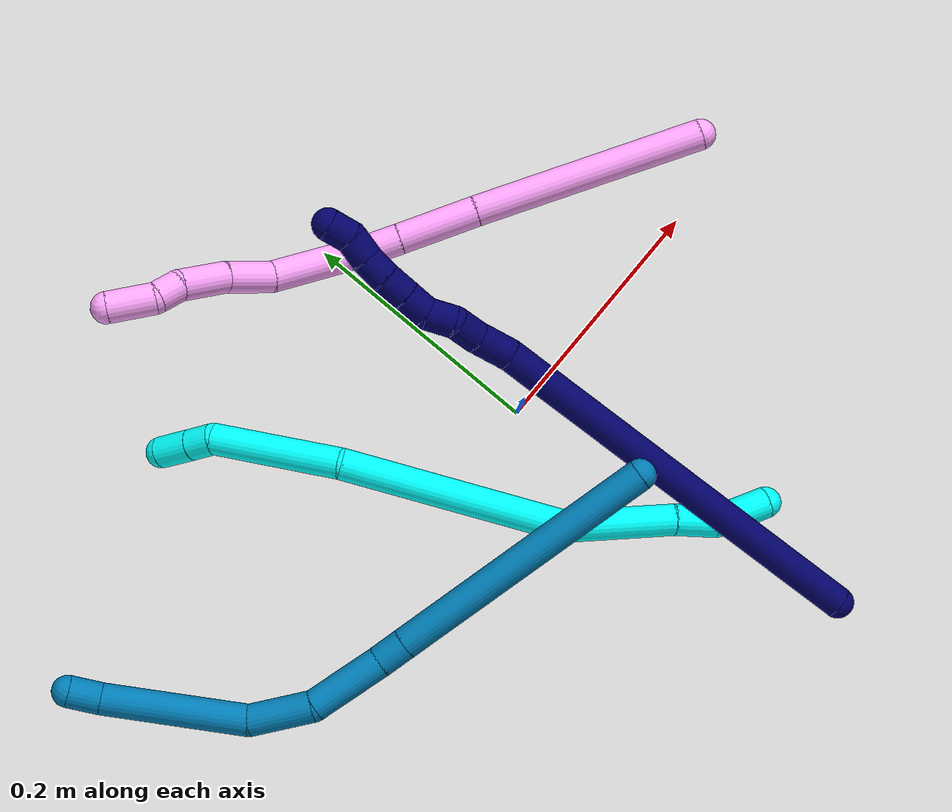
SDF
<sdf version="1.7">
 <world name="default">
  <model name="3">
   <static>0</static>
   <link name="3">
    <collision name="collision-cylinder-e_1_1_4">
     <pose>0.005304 0.018757 0.009859 -1.08686 0.245249 -0.148628</pose>
     <geometry><cylinder><radius>0.0125</radius><length>0.043688</length></cylinder></geometry>
     <surface>
      <friction><ode><mu>1.16</mu><mu2>1.16</mu2><slip1>0</slip1><slip2>0</slip2></ode></friction>
      <contact><ode><kp>1e+06</kp><kd>1</kd><max_vel>0</max_vel><min_depth>0.001</min_depth></ode></contact>
     </surface>
    </collision>
    <visual name="visual-cylinder-e_1_1_4">
     <pose>0.005304 0.018757 0.009859 -1.08686 0.245249 -0.148628</pose>
     <geometry><cylinder><radius>0.0125</radius><length>0.043688</length></cylinder></geometry>
     <material><ambient>0.003922 1 0.996078 1</ambient></material>
    </visual>
    <collision name="collision-cylinder-e_2_4_5">
     <pose>0.008256 0.051518 0.029446 -0.963685 -0.137054 0.071755</pose>
     <geometry><cylinder><radius>0.0125</radius><length>0.034426</length></cylinder></geometry>
     <surface>
      <friction><ode><mu>1.16</mu><mu2>1.16</mu2><slip1>0</slip1><slip2>0</slip2></ode></friction>
      <contact><ode><kp>1e+06</kp><kd>1</kd><max_vel>0</max_vel><min_depth>0.001</min_depth></ode></contact>
     </surface>
    </collision>
    <visual name="visual-cylinder-e_2_4_5">
     <pose>0.008256 0.051518 0.029446 -0.963685 -0.137054 0.071755</pose>
     <geometry><cylinder><radius>0.0125</radius><length>0.034426</length></cylinder></geometry>
     <material><ambient>0.003922 1 0.996078 1</ambient></material>
    </visual>
    <collision name="collision-cylinder-e_3_5_6">
     <pose>0.004808 0.100951 0.063854 -0.96234 -0.025382 0.013253</pose>
     <geometry><cylinder><radius>0.0125</radius><length>0.08638</length></cylinder></geometry>
     <surface>
      <friction><ode><mu>1.16</mu><mu2>1.16</mu2><slip1>0</slip1><slip2>0</slip2></ode></friction>
      <contact><ode><kp>1e+06</kp><kd>1</kd><max_vel>0</max_vel><min_depth>0.001</min_depth></ode></contact>
     </surface>
    </collision>
    <visual name="visual-cylinder-e_3_5_6">
     <pose>0.004808 0.100951 0.063854 -0.96234 -0.025382 0.013253</pose>
     <geometry><cylinder><radius>0.0125</radius><length>0.08638</length></cylinder></geometry>
     <material><ambient>0.003922 1 0.996078 1</ambient></material>
    </visual>
    <collision name="collision-cylinder-e_4_6_7">
     <pose>-0.024306 0.196929 0.149487 -0.782085 -0.315227 0.13086</pose>
     <geometry><cylinder><radius>0.0125</radius><length>0.18074</length></cylinder></geometry>
     <surface>
      <friction><ode><mu>1.16</mu><mu2>1.16</mu2><slip1>0</slip1><slip2>0</slip2></ode></friction>
      <contact><ode><kp>1e+06</kp><kd>1</kd><max_vel>0</max_vel><min_depth>0.001</min_depth></ode></contact>
     </surface>
    </collision>
    <visual name="visual-cylinder-e_4_6_7">
     <pose>-0.024306 0.196929 0.149487 -0.782085 -0.315227 0.13086</pose>
     <geometry><cylinder><radius>0.0125</radius><length>0.18074</length></cylinder></geometry>
     <material><ambient>0.003922 1 0.996078 1</ambient></material>
    </visual>
    <collision name="collision-cylinder-e_5_7_8">
     <pose>-0.060224 0.283638 0.254953 -0.531296 -0.151846 0.041388</pose>
     <geometry><cylinder><radius>0.0125</radius><length>0.104462</length></cylinder></geometry>
     <surface>
      <friction><ode><mu>1.16</mu><mu2>1.16</mu2><slip1>0</slip1><slip2>0</slip2></ode></friction>
      <contact><ode><kp>1e+06</kp><kd>1</kd><max_vel>0</max_vel><min_depth>0.001</min_depth></ode></contact>
     </surface>
    </collision>
    <visual name="visual-cylinder-e_5_7_8">
     <pose>-0.060224 0.283638 0.254953 -0.531296 -0.151846 0.041388</pose>
     <geometry><cylinder><radius>0.0125</radius><length>0.104462</length></cylinder></geometry>
     <material><ambient>0.003922 1 0.996078 1</ambient></material>
    </visual>
    <collision name="collision-cylinder-e_6_8_9">
     <pose>-0.064999 0.313647 0.308715 -0.394474 0.302475 -0.060891</pose>
     <geometry><cylinder><radius>0.0125</radius><length>0.020989</length></cylinder></geometry>
     <surface>
      <friction><ode><mu>1.16</mu><mu2>1.16</mu2><slip1>0</slip1><slip2>0</slip2></ode></friction>
      <contact><ode><kp>1e+06</kp><kd>1</kd><max_vel>0</max_vel><min_depth>0.001</min_depth></ode></contact>
     </surface>
    </collision>
    <visual name="visual-cylinder-e_6_8_9">
     <pose>-0.064999 0.313647 0.308715 -0.394474 0.302475 -0.060891</pose>
     <geometry><cylinder><radius>0.0125</radius><length>0.020989</length></cylinder></geometry>
     <material><ambient>0.003922 1 0.996078 1</ambient></material>
    </visual>
    <collision name="collision-cylinder-e_7_9_2">
     <pose>-0.057597 0.322714 0.330977 -0.381259 0.296031 -0.057531</pose>
     <geometry><cylinder><radius>0.0125</radius><length>0.029315</length></cylinder></geometry>
     <surface>
      <friction><ode><mu>1.16</mu><mu2>1.16</mu2><slip1>0</slip1><slip2>0</slip2></ode></friction>
      <contact><ode><kp>1e+06</kp><kd>1</kd><max_vel>0</max_vel><min_depth>0.001</min_depth></ode></contact>
     </surface>
    </collision>
    <visual name="visual-cylinder-e_7_9_2">
     <pose>-0.057597 0.322714 0.330977 -0.381259 0.296031 -0.057531</pose>
     <geometry><cylinder><radius>0.0125</radius><length>0.029315</length></cylinder></geometry>
     <material><ambient>0.003922 1 0.996078 1</ambient></material>
    </visual>
    <collision name="collision-sphere-2">
     <pose>-0.053321 0.32793 0.34399 0 -0 0</pose>
     <geometry><sphere><radius>0.0125</radius></sphere></geometry>
     <surface>
      <friction><ode><mu>1.16</mu><mu2>1.16</mu2><slip1>0</slip1><slip2>0</slip2></ode></friction>
      <contact><ode><kp>1e+06</kp><kd>1</kd><max_vel>0</max_vel><min_depth>0.001</min_depth></ode></contact>
     </surface>
    </collision>
    <visual name="visual-sphere-2">
     <pose>-0.053321 0.32793 0.34399 0 -0 0</pose>
     <geometry><sphere><radius>0.0125</radius></sphere></geometry>
     <material><ambient>0.003922 1 0.996078 1</ambient></material>
    </visual>
    <collision name="collision-sphere-9">
     <pose>-0.061873 0.317497 0.317964 0 -0 0</pose>
     <geometry><sphere><radius>0.0125</radius></sphere></geometry>
     <surface>
      <friction><ode><mu>1.16</mu><mu2>1.16</mu2><slip1>0</slip1><slip2>0</slip2></ode></friction>
      <contact><ode><kp>1e+06</kp><kd>1</kd><max_vel>0</max_vel><min_depth>0.001</min_depth></ode></contact>
     </surface>
    </collision>
    <visual name="visual-sphere-9">
     <pose>-0.061873 0.317497 0.317964 0 -0 0</pose>
     <geometry><sphere><radius>0.0125</radius></sphere></geometry>
     <material><ambient>0.003922 1 0.996078 1</ambient></material>
    </visual>
    <collision name="collision-sphere-4">
     <pose>0.010607 0.037514 0.019718 0 -0 0</pose>
     <geometry><sphere><radius>0.0125</radius></sphere></geometry>
     <surface>
      <friction><ode><mu>1.16</mu><mu2>1.16</mu2><slip1>0</slip1><slip2>0</slip2></ode></friction>
      <contact><ode><kp>1e+06</kp><kd>1</kd><max_vel>0</max_vel><min_depth>0.001</min_depth></ode></contact>
     </surface>
    </collision>
    <visual name="visual-sphere-4">
     <pose>0.010607 0.037514 0.019718 0 -0 0</pose>
     <geometry><sphere><radius>0.0125</radius></sphere></geometry>
     <material><ambient>0.003922 1 0.996078 1</ambient></material>
    </visual>
    <collision name="collision-sphere-1">
     <geometry><sphere><radius>0.0125</radius></sphere></geometry>
     <surface>
      <friction><ode><mu>1.16</mu><mu2>1.16</mu2><slip1>0</slip1><slip2>0</slip2></ode></friction>
      <contact><ode><kp>1e+06</kp><kd>1</kd><max_vel>0</max_vel><min_depth>0.001</min_depth></ode></contact>
     </surface>
    </collision>
    <visual name="visual-sphere-1">
     <geometry><sphere><radius>0.0125</radius></sphere></geometry>
     <material><ambient>0.003922 1 0.996078 1</ambient></material>
    </visual>
    <collision name="collision-sphere-8">
     <pose>-0.068125 0.309797 0.299466 0 -0 0</pose>
     <geometry><sphere><radius>0.0125</radius></sphere></geometry>
     <surface>
      <friction><ode><mu>1.16</mu><mu2>1.16</mu2><slip1>0</slip1><slip2>0</slip2></ode></friction>
      <contact><ode><kp>1e+06</kp><kd>1</kd><max_vel>0</max_vel><min_depth>0.001</min_depth></ode></contact>
     </surface>
    </collision>
    <visual name="visual-sphere-8">
     <pose>-0.068125 0.309797 0.299466 0 -0 0</pose>
     <geometry><sphere><radius>0.0125</radius></sphere></geometry>
     <material><ambient>0.003922 1 0.996078 1</ambient></material>
    </visual>
    <collision name="collision-sphere-5">
     <pose>0.005904 0.065523 0.039174 0 -0 0</pose>
     <geometry><sphere><radius>0.0125</radius></sphere></geometry>
     <surface>
      <friction><ode><mu>1.16</mu><mu2>1.16</mu2><slip1>0</slip1><slip2>0</slip2></ode></friction>
      <contact><ode><kp>1e+06</kp><kd>1</kd><max_vel>0</max_vel><min_depth>0.001</min_depth></ode></contact>
     </surface>
    </collision>
    <visual name="visual-sphere-5">
     <pose>0.005904 0.065523 0.039174 0 -0 0</pose>
     <geometry><sphere><radius>0.0125</radius></sphere></geometry>
     <material><ambient>0.003922 1 0.996078 1</ambient></material>
    </visual>
    <collision name="collision-sphere-6">
     <pose>0.003711 0.136378 0.088534 0 -0 0</pose>
     <geometry><sphere><radius>0.0125</radius></sphere></geometry>
     <surface>
      <friction><ode><mu>1.16</mu><mu2>1.16</mu2><slip1>0</slip1><slip2>0</slip2></ode></friction>
      <contact><ode><kp>1e+06</kp><kd>1</kd><max_vel>0</max_vel><min_depth>0.001</min_depth></ode></contact>
     </surface>
    </collision>
    <visual name="visual-sphere-6">
     <pose>0.003711 0.136378 0.088534 0 -0 0</pose>
     <geometry><sphere><radius>0.0125</radius></sphere></geometry>
     <material><ambient>0.003922 1 0.996078 1</ambient></material>
    </visual>
    <collision name="collision-sphere-7">
     <pose>-0.052324 0.25748 0.21044 0 -0 0</pose>
     <geometry><sphere><radius>0.0125</radius></sphere></geometry>
     <surface>
      <friction><ode><mu>1.16</mu><mu2>1.16</mu2><slip1>0</slip1><slip2>0</slip2></ode></friction>
      <contact><ode><kp>1e+06</kp><kd>1</kd><max_vel>0</max_vel><min_depth>0.001</min_depth></ode></contact>
     </surface>
    </collision>
    <visual name="visual-sphere-7">
     <pose>-0.052324 0.25748 0.21044 0 -0 0</pose>
     <geometry><sphere><radius>0.0125</radius></sphere></geometry>
     <material><ambient>0.003922 1 0.996078 1</ambient></material>
    </visual>
    <inertial>
     <pose>-0.025611 0.185158 0.153587 0 -0 0</pose>
     <mass>0.5</mass>
     <inertia>
      <ixx>0.000704</ixx>
      <ixy>0</ixy>
      <ixz>0</ixz>
      <iyy>0.000586</iyy>
      <iyz>0</iyz>
      <izz>-0.000249</izz>
     </inertia>
    </inertial>
   </link>
   <pose>0.070404 -0.195999 0.011902 2.36974 0.314759 -2.41272</pose>
  </model>
  <model name="4">
   <static>0</static>
   <link name="4">
    <collision name="collision-cylinder-e_1_1_4">
     <pose>-0.07539 0.056078 -0.007147 -1.69757 -0.927391 1.03287</pose>
     <geometry><cylinder><radius>0.0125</radius><length>0.188463</length></cylinder></geometry>
     <surface>
      <friction><ode><mu>1.16</mu><mu2>1.16</mu2><slip1>0</slip1><slip2>0</slip2></ode></friction>
      <contact><ode><kp>1e+06</kp><kd>1</kd><max_vel>0</max_vel><min_depth>0.001</min_depth></ode></contact>
     </surface>
    </collision>
    <visual name="visual-cylinder-e_1_1_4">
     <pose>-0.07539 0.056078 -0.007147 -1.69757 -0.927391 1.03287</pose>
     <geometry><cylinder><radius>0.0125</radius><length>0.188463</length></cylinder></geometry>
     <material><ambient>1 0.65098 0.996078 1</ambient></material>
    </visual>
    <collision name="collision-cylinder-e_2_4_5">
     <pose>-0.176528 0.131475 -0.015995 -1.65858 -0.925229 0.997262</pose>
     <geometry><cylinder><radius>0.0125</radius><length>0.064468</length></cylinder></geometry>
     <surface>
      <friction><ode><mu>1.16</mu><mu2>1.16</mu2><slip1>0</slip1><slip2>0</slip2></ode></friction>
      <contact><ode><kp>1e+06</kp><kd>1</kd><max_vel>0</max_vel><min_depth>0.001</min_depth></ode></contact>
     </surface>
    </collision>
    <visual name="visual-cylinder-e_2_4_5">
     <pose>-0.176528 0.131475 -0.015995 -1.65858 -0.925229 0.997262</pose>
     <geometry><cylinder><radius>0.0125</radius><length>0.064468</length></cylinder></geometry>
     <material><ambient>1 0.65098 0.996078 1</ambient></material>
    </visual>
    <collision name="collision-cylinder-e_3_5_6">
     <pose>-0.213718 0.159687 -0.018886 -1.70391 -0.905789 1.01508</pose>
     <geometry><cylinder><radius>0.0125</radius><length>0.029081</length></cylinder></geometry>
     <surface>
      <friction><ode><mu>1.16</mu><mu2>1.16</mu2><slip1>0</slip1><slip2>0</slip2></ode></friction>
      <contact><ode><kp>1e+06</kp><kd>1</kd><max_vel>0</max_vel><min_depth>0.001</min_depth></ode></contact>
     </surface>
    </collision>
    <visual name="visual-cylinder-e_3_5_6">
     <pose>-0.213718 0.159687 -0.018886 -1.70391 -0.905789 1.01508</pose>
     <geometry><cylinder><radius>0.0125</radius><length>0.029081</length></cylinder></geometry>
     <material><ambient>1 0.65098 0.996078 1</ambient></material>
    </visual>
    <collision name="collision-cylinder-e_4_6_7">
     <pose>-0.250337 0.196897 -0.033199 -2.00475 -0.678805 1.0099</pose>
     <geometry><cylinder><radius>0.0125</radius><length>0.080199</length></cylinder></geometry>
     <surface>
      <friction><ode><mu>1.16</mu><mu2>1.16</mu2><slip1>0</slip1><slip2>0</slip2></ode></friction>
      <contact><ode><kp>1e+06</kp><kd>1</kd><max_vel>0</max_vel><min_depth>0.001</min_depth></ode></contact>
     </surface>
    </collision>
    <visual name="visual-cylinder-e_4_6_7">
     <pose>-0.250337 0.196897 -0.033199 -2.00475 -0.678805 1.0099</pose>
     <geometry><cylinder><radius>0.0125</radius><length>0.080199</length></cylinder></geometry>
     <material><ambient>1 0.65098 0.996078 1</ambient></material>
    </visual>
    <collision name="collision-cylinder-e_5_7_8">
     <pose>-0.286442 0.236516 -0.057626 -2.35629 -0.599712 1.28254</pose>
     <geometry><cylinder><radius>0.0125</radius><length>0.038726</length></cylinder></geometry>
     <surface>
      <friction><ode><mu>1.16</mu><mu2>1.16</mu2><slip1>0</slip1><slip2>0</slip2></ode></friction>
      <contact><ode><kp>1e+06</kp><kd>1</kd><max_vel>0</max_vel><min_depth>0.001</min_depth></ode></contact>
     </surface>
    </collision>
    <visual name="visual-cylinder-e_5_7_8">
     <pose>-0.286442 0.236516 -0.057626 -2.35629 -0.599712 1.28254</pose>
     <geometry><cylinder><radius>0.0125</radius><length>0.038726</length></cylinder></geometry>
     <material><ambient>1 0.65098 0.996078 1</ambient></material>
    </visual>
    <collision name="collision-cylinder-e_6_8_9">
     <pose>-0.307179 0.262139 -0.078996 -2.1835 -0.510705 0.931454</pose>
     <geometry><cylinder><radius>0.0125</radius><length>0.040132</length></cylinder></geometry>
     <surface>
      <friction><ode><mu>1.16</mu><mu2>1.16</mu2><slip1>0</slip1><slip2>0</slip2></ode></friction>
      <contact><ode><kp>1e+06</kp><kd>1</kd><max_vel>0</max_vel><min_depth>0.001</min_depth></ode></contact>
     </surface>
    </collision>
    <visual name="visual-cylinder-e_6_8_9">
     <pose>-0.307179 0.262139 -0.078996 -2.1835 -0.510705 0.931454</pose>
     <geometry><cylinder><radius>0.0125</radius><length>0.040132</length></cylinder></geometry>
     <material><ambient>1 0.65098 0.996078 1</ambient></material>
    </visual>
    <collision name="collision-cylinder-e_7_9_10">
     <pose>-0.321656 0.285632 -0.09162 -1.84259 -0.455949 0.593001</pose>
     <geometry><cylinder><radius>0.0125</radius><length>0.02121</length></cylinder></geometry>
     <surface>
      <friction><ode><mu>1.16</mu><mu2>1.16</mu2><slip1>0</slip1><slip2>0</slip2></ode></friction>
      <contact><ode><kp>1e+06</kp><kd>1</kd><max_vel>0</max_vel><min_depth>0.001</min_depth></ode></contact>
     </surface>
    </collision>
    <visual name="visual-cylinder-e_7_9_10">
     <pose>-0.321656 0.285632 -0.09162 -1.84259 -0.455949 0.593001</pose>
     <geometry><cylinder><radius>0.0125</radius><length>0.02121</length></cylinder></geometry>
     <material><ambient>1 0.65098 0.996078 1</ambient></material>
    </visual>
    <collision name="collision-cylinder-e_8_10_2">
     <pose>-0.341329 0.305311 -0.098676 -1.97545 -0.919779 1.28824</pose>
     <geometry><cylinder><radius>0.0125</radius><length>0.037721</length></cylinder></geometry>
     <surface>
      <friction><ode><mu>1.16</mu><mu2>1.16</mu2><slip1>0</slip1><slip2>0</slip2></ode></friction>
      <contact><ode><kp>1e+06</kp><kd>1</kd><max_vel>0</max_vel><min_depth>0.001</min_depth></ode></contact>
     </surface>
    </collision>
    <visual name="visual-cylinder-e_8_10_2">
     <pose>-0.341329 0.305311 -0.098676 -1.97545 -0.919779 1.28824</pose>
     <geometry><cylinder><radius>0.0125</radius><length>0.037721</length></cylinder></geometry>
     <material><ambient>1 0.65098 0.996078 1</ambient></material>
    </visual>
    <collision name="collision-sphere-2">
     <pose>-0.356332 0.315817 -0.103175 0 -0 0</pose>
     <geometry><sphere><radius>0.0125</radius></sphere></geometry>
     <surface>
      <friction><ode><mu>1.16</mu><mu2>1.16</mu2><slip1>0</slip1><slip2>0</slip2></ode></friction>
      <contact><ode><kp>1e+06</kp><kd>1</kd><max_vel>0</max_vel><min_depth>0.001</min_depth></ode></contact>
     </surface>
    </collision>
    <visual name="visual-sphere-2">
     <pose>-0.356332 0.315817 -0.103175 0 -0 0</pose>
     <geometry><sphere><radius>0.0125</radius></sphere></geometry>
     <material><ambient>1 0.65098 0.996078 1</ambient></material>
    </visual>
    <collision name="collision-sphere-10">
     <pose>-0.326326 0.294805 -0.094176 0 -0 0</pose>
     <geometry><sphere><radius>0.0125</radius></sphere></geometry>
     <surface>
      <friction><ode><mu>1.16</mu><mu2>1.16</mu2><slip1>0</slip1><slip2>0</slip2></ode></friction>
      <contact><ode><kp>1e+06</kp><kd>1</kd><max_vel>0</max_vel><min_depth>0.001</min_depth></ode></contact>
     </surface>
    </collision>
    <visual name="visual-sphere-10">
     <pose>-0.326326 0.294805 -0.094176 0 -0 0</pose>
     <geometry><sphere><radius>0.0125</radius></sphere></geometry>
     <material><ambient>1 0.65098 0.996078 1</ambient></material>
    </visual>
    <collision name="collision-sphere-9">
     <pose>-0.316987 0.27646 -0.089063 0 -0 0</pose>
     <geometry><sphere><radius>0.0125</radius></sphere></geometry>
     <surface>
      <friction><ode><mu>1.16</mu><mu2>1.16</mu2><slip1>0</slip1><slip2>0</slip2></ode></friction>
      <contact><ode><kp>1e+06</kp><kd>1</kd><max_vel>0</max_vel><min_depth>0.001</min_depth></ode></contact>
     </surface>
    </collision>
    <visual name="visual-sphere-9">
     <pose>-0.316987 0.27646 -0.089063 0 -0 0</pose>
     <geometry><sphere><radius>0.0125</radius></sphere></geometry>
     <material><ambient>1 0.65098 0.996078 1</ambient></material>
    </visual>
    <collision name="collision-sphere-4">
     <pose>-0.150781 0.112156 -0.014295 0 -0 0</pose>
     <geometry><sphere><radius>0.0125</radius></sphere></geometry>
     <surface>
      <friction><ode><mu>1.16</mu><mu2>1.16</mu2><slip1>0</slip1><slip2>0</slip2></ode></friction>
      <contact><ode><kp>1e+06</kp><kd>1</kd><max_vel>0</max_vel><min_depth>0.001</min_depth></ode></contact>
     </surface>
    </collision>
    <visual name="visual-sphere-4">
     <pose>-0.150781 0.112156 -0.014295 0 -0 0</pose>
     <geometry><sphere><radius>0.0125</radius></sphere></geometry>
     <material><ambient>1 0.65098 0.996078 1</ambient></material>
    </visual>
    <collision name="collision-sphere-1">
     <geometry><sphere><radius>0.0125</radius></sphere></geometry>
     <surface>
      <friction><ode><mu>1.16</mu><mu2>1.16</mu2><slip1>0</slip1><slip2>0</slip2></ode></friction>
      <contact><ode><kp>1e+06</kp><kd>1</kd><max_vel>0</max_vel><min_depth>0.001</min_depth></ode></contact>
     </surface>
    </collision>
    <visual name="visual-sphere-1">
     <geometry><sphere><radius>0.0125</radius></sphere></geometry>
     <material><ambient>1 0.65098 0.996078 1</ambient></material>
    </visual>
    <collision name="collision-sphere-8">
     <pose>-0.297371 0.247818 -0.068929 0 -0 0</pose>
     <geometry><sphere><radius>0.0125</radius></sphere></geometry>
     <surface>
      <friction><ode><mu>1.16</mu><mu2>1.16</mu2><slip1>0</slip1><slip2>0</slip2></ode></friction>
      <contact><ode><kp>1e+06</kp><kd>1</kd><max_vel>0</max_vel><min_depth>0.001</min_depth></ode></contact>
     </surface>
    </collision>
    <visual name="visual-sphere-8">
     <pose>-0.297371 0.247818 -0.068929 0 -0 0</pose>
     <geometry><sphere><radius>0.0125</radius></sphere></geometry>
     <material><ambient>1 0.65098 0.996078 1</ambient></material>
    </visual>
    <collision name="collision-sphere-5">
     <pose>-0.202276 0.150794 -0.017695 0 -0 0</pose>
     <geometry><sphere><radius>0.0125</radius></sphere></geometry>
     <surface>
      <friction><ode><mu>1.16</mu><mu2>1.16</mu2><slip1>0</slip1><slip2>0</slip2></ode></friction>
      <contact><ode><kp>1e+06</kp><kd>1</kd><max_vel>0</max_vel><min_depth>0.001</min_depth></ode></contact>
     </surface>
    </collision>
    <visual name="visual-sphere-5">
     <pose>-0.202276 0.150794 -0.017695 0 -0 0</pose>
     <geometry><sphere><radius>0.0125</radius></sphere></geometry>
     <material><ambient>1 0.65098 0.996078 1</ambient></material>
    </visual>
    <collision name="collision-sphere-6">
     <pose>-0.22516 0.16858 -0.020077 0 -0 0</pose>
     <geometry><sphere><radius>0.0125</radius></sphere></geometry>
     <surface>
      <friction><ode><mu>1.16</mu><mu2>1.16</mu2><slip1>0</slip1><slip2>0</slip2></ode></friction>
      <contact><ode><kp>1e+06</kp><kd>1</kd><max_vel>0</max_vel><min_depth>0.001</min_depth></ode></contact>
     </surface>
    </collision>
    <visual name="visual-sphere-6">
     <pose>-0.22516 0.16858 -0.020077 0 -0 0</pose>
     <geometry><sphere><radius>0.0125</radius></sphere></geometry>
     <material><ambient>1 0.65098 0.996078 1</ambient></material>
    </visual>
    <collision name="collision-sphere-7">
     <pose>-0.275514 0.225215 -0.046322 0 -0 0</pose>
     <geometry><sphere><radius>0.0125</radius></sphere></geometry>
     <surface>
      <friction><ode><mu>1.16</mu><mu2>1.16</mu2><slip1>0</slip1><slip2>0</slip2></ode></friction>
      <contact><ode><kp>1e+06</kp><kd>1</kd><max_vel>0</max_vel><min_depth>0.001</min_depth></ode></contact>
     </surface>
    </collision>
    <visual name="visual-sphere-7">
     <pose>-0.275514 0.225215 -0.046322 0 -0 0</pose>
     <geometry><sphere><radius>0.0125</radius></sphere></geometry>
     <material><ambient>1 0.65098 0.996078 1</ambient></material>
    </visual>
    <inertial>
     <pose>-0.189997 0.153468 -0.033315 0 -0 0</pose>
     <mass>0.5</mass>
     <inertia>
      <ixx>0.000531</ixx>
      <ixy>0</ixy>
      <ixz>0</ixz>
      <iyy>0.000757</iyy>
      <iyz>0</iyz>
      <izz>0.000109</izz>
     </inertia>
    </inertial>
   </link>
   <pose>0.263412 0.029304 0.013894 2.59571 -0.443381 -1.03471</pose>
  </model>
  <model name="7">
   <static>0</static>
   <link name="7">
    <collision name="collision-cylinder-e_1_1_4">
     <pose>0.048463 0.148999 0.042662 -1.29193 0.303059 -0.22922</pose>
     <geometry><cylinder><radius>0.0125</radius><length>0.324773</length></cylinder></geometry>
     <surface>
      <friction><ode><mu>1.16</mu><mu2>1.16</mu2><slip1>0</slip1><slip2>0</slip2></ode></friction>
      <contact><ode><kp>1e+06</kp><kd>1</kd><max_vel>0</max_vel><min_depth>0.001</min_depth></ode></contact>
     </surface>
    </collision>
    <visual name="visual-cylinder-e_1_1_4">
     <pose>0.048463 0.148999 0.042662 -1.29193 0.303059 -0.22922</pose>
     <geometry><cylinder><radius>0.0125</radius><length>0.324773</length></cylinder></geometry>
     <material><ambient>0.003922 0 0.403922 1</ambient></material>
    </visual>
    <collision name="collision-cylinder-e_2_4_5">
     <pose>0.098165 0.31286 0.087644 -1.41591 0.082185 -0.070359</pose>
     <geometry><cylinder><radius>0.0125</radius><length>0.030185</length></cylinder></geometry>
     <surface>
      <friction><ode><mu>1.16</mu><mu2>1.16</mu2><slip1>0</slip1><slip2>0</slip2></ode></friction>
      <contact><ode><kp>1e+06</kp><kd>1</kd><max_vel>0</max_vel><min_depth>0.001</min_depth></ode></contact>
     </surface>
    </collision>
    <visual name="visual-cylinder-e_2_4_5">
     <pose>0.098165 0.31286 0.087644 -1.41591 0.082185 -0.070359</pose>
     <geometry><cylinder><radius>0.0125</radius><length>0.030185</length></cylinder></geometry>
     <material><ambient>0.003922 0 0.403922 1</ambient></material>
    </visual>
    <collision name="collision-cylinder-e_3_5_6">
     <pose>0.098701 0.338486 0.093104 -1.28708 -0.062637 0.046988</pose>
     <geometry><cylinder><radius>0.0125</radius><length>0.02247</length></cylinder></geometry>
     <surface>
      <friction><ode><mu>1.16</mu><mu2>1.16</mu2><slip1>0</slip1><slip2>0</slip2></ode></friction>
      <contact><ode><kp>1e+06</kp><kd>1</kd><max_vel>0</max_vel><min_depth>0.001</min_depth></ode></contact>
     </surface>
    </collision>
    <visual name="visual-cylinder-e_3_5_6">
     <pose>0.098701 0.338486 0.093104 -1.28708 -0.062637 0.046988</pose>
     <geometry><cylinder><radius>0.0125</radius><length>0.02247</length></cylinder></geometry>
     <material><ambient>0.003922 0 0.403922 1</ambient></material>
    </visual>
    <collision name="collision-cylinder-e_4_6_7">
     <pose>0.101144 0.359968 0.0953 -1.65854 0.2845 -0.310226</pose>
     <geometry><cylinder><radius>0.0125</radius><length>0.022419</length></cylinder></geometry>
     <surface>
      <friction><ode><mu>1.16</mu><mu2>1.16</mu2><slip1>0</slip1><slip2>0</slip2></ode></friction>
      <contact><ode><kp>1e+06</kp><kd>1</kd><max_vel>0</max_vel><min_depth>0.001</min_depth></ode></contact>
     </surface>
    </collision>
    <visual name="visual-cylinder-e_4_6_7">
     <pose>0.101144 0.359968 0.0953 -1.65854 0.2845 -0.310226</pose>
     <geometry><cylinder><radius>0.0125</radius><length>0.022419</length></cylinder></geometry>
     <material><ambient>0.003922 0 0.403922 1</ambient></material>
    </visual>
    <collision name="collision-cylinder-e_5_7_8">
     <pose>0.106895 0.379786 0.097673 -1.2213 0.262748 -0.184434</pose>
     <geometry><cylinder><radius>0.0125</radius><length>0.020061</length></cylinder></geometry>
     <surface>
      <friction><ode><mu>1.16</mu><mu2>1.16</mu2><slip1>0</slip1><slip2>0</slip2></ode></friction>
      <contact><ode><kp>1e+06</kp><kd>1</kd><max_vel>0</max_vel><min_depth>0.001</min_depth></ode></contact>
     </surface>
    </collision>
    <visual name="visual-cylinder-e_5_7_8">
     <pose>0.106895 0.379786 0.097673 -1.2213 0.262748 -0.184434</pose>
     <geometry><cylinder><radius>0.0125</radius><length>0.020061</length></cylinder></geometry>
     <material><ambient>0.003922 0 0.403922 1</ambient></material>
    </visual>
    <collision name="collision-cylinder-e_6_8_9">
     <pose>0.112381 0.397918 0.104312 -1.21836 0.290839 -0.203654</pose>
     <geometry><cylinder><radius>0.0125</radius><length>0.02009</length></cylinder></geometry>
     <surface>
      <friction><ode><mu>1.16</mu><mu2>1.16</mu2><slip1>0</slip1><slip2>0</slip2></ode></friction>
      <contact><ode><kp>1e+06</kp><kd>1</kd><max_vel>0</max_vel><min_depth>0.001</min_depth></ode></contact>
     </surface>
    </collision>
    <visual name="visual-cylinder-e_6_8_9">
     <pose>0.112381 0.397918 0.104312 -1.21836 0.290839 -0.203654</pose>
     <geometry><cylinder><radius>0.0125</radius><length>0.02009</length></cylinder></geometry>
     <material><ambient>0.003922 0 0.403922 1</ambient></material>
    </visual>
    <collision name="collision-cylinder-e_7_9_10">
     <pose>0.118915 0.415425 0.111484 -1.14435 0.37407 -0.24257</pose>
     <geometry><cylinder><radius>0.0125</radius><length>0.020001</length></cylinder></geometry>
     <surface>
      <friction><ode><mu>1.16</mu><mu2>1.16</mu2><slip1>0</slip1><slip2>0</slip2></ode></friction>
      <contact><ode><kp>1e+06</kp><kd>1</kd><max_vel>0</max_vel><min_depth>0.001</min_depth></ode></contact>
     </surface>
    </collision>
    <visual name="visual-cylinder-e_7_9_10">
     <pose>0.118915 0.415425 0.111484 -1.14435 0.37407 -0.24257</pose>
     <geometry><cylinder><radius>0.0125</radius><length>0.020001</length></cylinder></geometry>
     <material><ambient>0.003922 0 0.403922 1</ambient></material>
    </visual>
    <collision name="collision-cylinder-e_8_10_11">
     <pose>0.125459 0.43184 0.120685 -0.97783 0.293093 -0.156729</pose>
     <geometry><cylinder><radius>0.0125</radius><length>0.020001</length></cylinder></geometry>
     <surface>
      <friction><ode><mu>1.16</mu><mu2>1.16</mu2><slip1>0</slip1><slip2>0</slip2></ode></friction>
      <contact><ode><kp>1e+06</kp><kd>1</kd><max_vel>0</max_vel><min_depth>0.001</min_depth></ode></contact>
     </surface>
    </collision>
    <visual name="visual-cylinder-e_8_10_11">
     <pose>0.125459 0.43184 0.120685 -0.97783 0.293093 -0.156729</pose>
     <geometry><cylinder><radius>0.0125</radius><length>0.020001</length></cylinder></geometry>
     <material><ambient>0.003922 0 0.403922 1</ambient></material>
    </visual>
    <collision name="collision-cylinder-e_9_11_2">
     <pose>0.130204 0.449476 0.127628 -1.40797 0.186662 -0.158627</pose>
     <geometry><cylinder><radius>0.0125</radius><length>0.02</length></cylinder></geometry>
     <surface>
      <friction><ode><mu>1.16</mu><mu2>1.16</mu2><slip1>0</slip1><slip2>0</slip2></ode></friction>
      <contact><ode><kp>1e+06</kp><kd>1</kd><max_vel>0</max_vel><min_depth>0.001</min_depth></ode></contact>
     </surface>
    </collision>
    <visual name="visual-cylinder-e_9_11_2">
     <pose>0.130204 0.449476 0.127628 -1.40797 0.186662 -0.158627</pose>
     <geometry><cylinder><radius>0.0125</radius><length>0.02</length></cylinder></geometry>
     <material><ambient>0.003922 0 0.403922 1</ambient></material>
    </visual>
    <collision name="collision-sphere-2">
     <pose>0.13206 0.459172 0.129221 0 -0 0</pose>
     <geometry><sphere><radius>0.0125</radius></sphere></geometry>
     <surface>
      <friction><ode><mu>1.16</mu><mu2>1.16</mu2><slip1>0</slip1><slip2>0</slip2></ode></friction>
      <contact><ode><kp>1e+06</kp><kd>1</kd><max_vel>0</max_vel><min_depth>0.001</min_depth></ode></contact>
     </surface>
    </collision>
    <visual name="visual-sphere-2">
     <pose>0.13206 0.459172 0.129221 0 -0 0</pose>
     <geometry><sphere><radius>0.0125</radius></sphere></geometry>
     <material><ambient>0.003922 0 0.403922 1</ambient></material>
    </visual>
    <collision name="collision-sphere-11">
     <pose>0.128348 0.43978 0.126035 0 -0 0</pose>
     <geometry><sphere><radius>0.0125</radius></sphere></geometry>
     <surface>
      <friction><ode><mu>1.16</mu><mu2>1.16</mu2><slip1>0</slip1><slip2>0</slip2></ode></friction>
      <contact><ode><kp>1e+06</kp><kd>1</kd><max_vel>0</max_vel><min_depth>0.001</min_depth></ode></contact>
     </surface>
    </collision>
    <visual name="visual-sphere-11">
     <pose>0.128348 0.43978 0.126035 0 -0 0</pose>
     <geometry><sphere><radius>0.0125</radius></sphere></geometry>
     <material><ambient>0.003922 0 0.403922 1</ambient></material>
    </visual>
    <collision name="collision-sphere-10">
     <pose>0.12257 0.4239 0.115335 0 -0 0</pose>
     <geometry><sphere><radius>0.0125</radius></sphere></geometry>
     <surface>
      <friction><ode><mu>1.16</mu><mu2>1.16</mu2><slip1>0</slip1><slip2>0</slip2></ode></friction>
      <contact><ode><kp>1e+06</kp><kd>1</kd><max_vel>0</max_vel><min_depth>0.001</min_depth></ode></contact>
     </surface>
    </collision>
    <visual name="visual-sphere-10">
     <pose>0.12257 0.4239 0.115335 0 -0 0</pose>
     <geometry><sphere><radius>0.0125</radius></sphere></geometry>
     <material><ambient>0.003922 0 0.403922 1</ambient></material>
    </visual>
    <collision name="collision-sphere-9">
     <pose>0.115261 0.40695 0.107634 0 -0 0</pose>
     <geometry><sphere><radius>0.0125</radius></sphere></geometry>
     <surface>
      <friction><ode><mu>1.16</mu><mu2>1.16</mu2><slip1>0</slip1><slip2>0</slip2></ode></friction>
      <contact><ode><kp>1e+06</kp><kd>1</kd><max_vel>0</max_vel><min_depth>0.001</min_depth></ode></contact>
     </surface>
    </collision>
    <visual name="visual-sphere-9">
     <pose>0.115261 0.40695 0.107634 0 -0 0</pose>
     <geometry><sphere><radius>0.0125</radius></sphere></geometry>
     <material><ambient>0.003922 0 0.403922 1</ambient></material>
    </visual>
    <collision name="collision-sphere-4">
     <pose>0.096926 0.297998 0.085324 0 -0 0</pose>
     <geometry><sphere><radius>0.0125</radius></sphere></geometry>
     <surface>
      <friction><ode><mu>1.16</mu><mu2>1.16</mu2><slip1>0</slip1><slip2>0</slip2></ode></friction>
      <contact><ode><kp>1e+06</kp><kd>1</kd><max_vel>0</max_vel><min_depth>0.001</min_depth></ode></contact>
     </surface>
    </collision>
    <visual name="visual-sphere-4">
     <pose>0.096926 0.297998 0.085324 0 -0 0</pose>
     <geometry><sphere><radius>0.0125</radius></sphere></geometry>
     <material><ambient>0.003922 0 0.403922 1</ambient></material>
    </visual>
    <collision name="collision-sphere-1">
     <geometry><sphere><radius>0.0125</radius></sphere></geometry>
     <surface>
      <friction><ode><mu>1.16</mu><mu2>1.16</mu2><slip1>0</slip1><slip2>0</slip2></ode></friction>
      <contact><ode><kp>1e+06</kp><kd>1</kd><max_vel>0</max_vel><min_depth>0.001</min_depth></ode></contact>
     </surface>
    </collision>
    <visual name="visual-sphere-1">
     <geometry><sphere><radius>0.0125</radius></sphere></geometry>
     <material><ambient>0.003922 0 0.403922 1</ambient></material>
    </visual>
    <collision name="collision-sphere-8">
     <pose>0.1095 0.388887 0.10099 0 -0 0</pose>
     <geometry><sphere><radius>0.0125</radius></sphere></geometry>
     <surface>
      <friction><ode><mu>1.16</mu><mu2>1.16</mu2><slip1>0</slip1><slip2>0</slip2></ode></friction>
      <contact><ode><kp>1e+06</kp><kd>1</kd><max_vel>0</max_vel><min_depth>0.001</min_depth></ode></contact>
     </surface>
    </collision>
    <visual name="visual-sphere-8">
     <pose>0.1095 0.388887 0.10099 0 -0 0</pose>
     <geometry><sphere><radius>0.0125</radius></sphere></geometry>
     <material><ambient>0.003922 0 0.403922 1</ambient></material>
    </visual>
    <collision name="collision-sphere-5">
     <pose>0.099404 0.327721 0.089965 0 -0 0</pose>
     <geometry><sphere><radius>0.0125</radius></sphere></geometry>
     <surface>
      <friction><ode><mu>1.16</mu><mu2>1.16</mu2><slip1>0</slip1><slip2>0</slip2></ode></friction>
      <contact><ode><kp>1e+06</kp><kd>1</kd><max_vel>0</max_vel><min_depth>0.001</min_depth></ode></contact>
     </surface>
    </collision>
    <visual name="visual-sphere-5">
     <pose>0.099404 0.327721 0.089965 0 -0 0</pose>
     <geometry><sphere><radius>0.0125</radius></sphere></geometry>
     <material><ambient>0.003922 0 0.403922 1</ambient></material>
    </visual>
    <collision name="collision-sphere-6">
     <pose>0.097997 0.34925 0.096242 0 -0 0</pose>
     <geometry><sphere><radius>0.0125</radius></sphere></geometry>
     <surface>
      <friction><ode><mu>1.16</mu><mu2>1.16</mu2><slip1>0</slip1><slip2>0</slip2></ode></friction>
      <contact><ode><kp>1e+06</kp><kd>1</kd><max_vel>0</max_vel><min_depth>0.001</min_depth></ode></contact>
     </surface>
    </collision>
    <visual name="visual-sphere-6">
     <pose>0.097997 0.34925 0.096242 0 -0 0</pose>
     <geometry><sphere><radius>0.0125</radius></sphere></geometry>
     <material><ambient>0.003922 0 0.403922 1</ambient></material>
    </visual>
    <collision name="collision-sphere-7">
     <pose>0.10429 0.370686 0.094357 0 -0 0</pose>
     <geometry><sphere><radius>0.0125</radius></sphere></geometry>
     <surface>
      <friction><ode><mu>1.16</mu><mu2>1.16</mu2><slip1>0</slip1><slip2>0</slip2></ode></friction>
      <contact><ode><kp>1e+06</kp><kd>1</kd><max_vel>0</max_vel><min_depth>0.001</min_depth></ode></contact>
     </surface>
    </collision>
    <visual name="visual-sphere-7">
     <pose>0.10429 0.370686 0.094357 0 -0 0</pose>
     <geometry><sphere><radius>0.0125</radius></sphere></geometry>
     <material><ambient>0.003922 0 0.403922 1</ambient></material>
    </visual>
    <inertial>
     <pose>0.070164 0.230118 0.063962 0 -0 0</pose>
     <mass>0.5</mass>
     <inertia>
      <ixx>0.002065</ixx>
      <ixy>0</ixy>
      <ixz>0</ixz>
      <iyy>0.000372</iyy>
      <iyz>0</iyz>
      <izz>-0.003493</izz>
     </inertia>
    </inertial>
   </link>
   <pose>0.045055 -0.287672 0.024516 0.919627 1.053 1.27074</pose>
  </model>
  <model name="9">
   <static>0</static>
   <link name="9">
    <collision name="collision-cylinder-e_1_1_4">
     <pose>-0.102115 0.022174 0.03701 -0.539783 -1.17104 0.362841</pose>
     <geometry><cylinder><radius>0.0125</radius><length>0.221709</length></cylinder></geometry>
     <surface>
      <friction><ode><mu>1.16</mu><mu2>1.16</mu2><slip1>0</slip1><slip2>0</slip2></ode></friction>
      <contact><ode><kp>1e+06</kp><kd>1</kd><max_vel>0</max_vel><min_depth>0.001</min_depth></ode></contact>
     </surface>
    </collision>
    <visual name="visual-cylinder-e_1_1_4">
     <pose>-0.102115 0.022174 0.03701 -0.539783 -1.17104 0.362841</pose>
     <geometry><cylinder><radius>0.0125</radius><length>0.221709</length></cylinder></geometry>
     <material><ambient>0 0.490196 0.709804 1</ambient></material>
    </visual>
    <collision name="collision-cylinder-e_2_4_5">
     <pose>-0.215307 0.046781 0.077998 -0.548948 -1.17233 0.36968</pose>
     <geometry><cylinder><radius>0.0125</radius><length>0.024039</length></cylinder></geometry>
     <surface>
      <friction><ode><mu>1.16</mu><mu2>1.16</mu2><slip1>0</slip1><slip2>0</slip2></ode></friction>
      <contact><ode><kp>1e+06</kp><kd>1</kd><max_vel>0</max_vel><min_depth>0.001</min_depth></ode></contact>
     </surface>
    </collision>
    <visual name="visual-cylinder-e_2_4_5">
     <pose>-0.215307 0.046781 0.077998 -0.548948 -1.17233 0.36968</pose>
     <geometry><cylinder><radius>0.0125</radius><length>0.024039</length></cylinder></geometry>
     <material><ambient>0 0.490196 0.709804 1</ambient></material>
    </visual>
    <collision name="collision-cylinder-e_3_5_6">
     <pose>-0.254759 0.050918 0.092543 -0.159835 -1.21006 0.110656</pose>
     <geometry><cylinder><radius>0.0125</radius><length>0.060651</length></cylinder></geometry>
     <surface>
      <friction><ode><mu>1.16</mu><mu2>1.16</mu2><slip1>0</slip1><slip2>0</slip2></ode></friction>
      <contact><ode><kp>1e+06</kp><kd>1</kd><max_vel>0</max_vel><min_depth>0.001</min_depth></ode></contact>
     </surface>
    </collision>
    <visual name="visual-cylinder-e_3_5_6">
     <pose>-0.254759 0.050918 0.092543 -0.159835 -1.21006 0.110656</pose>
     <geometry><cylinder><radius>0.0125</radius><length>0.060651</length></cylinder></geometry>
     <material><ambient>0 0.490196 0.709804 1</ambient></material>
    </visual>
    <collision name="collision-cylinder-e_4_6_7">
     <pose>-0.30195 0.056448 0.120464 -0.217022 -0.814018 0.093854</pose>
     <geometry><cylinder><radius>0.0125</radius><length>0.051764</length></cylinder></geometry>
     <surface>
      <friction><ode><mu>1.16</mu><mu2>1.16</mu2><slip1>0</slip1><slip2>0</slip2></ode></friction>
      <contact><ode><kp>1e+06</kp><kd>1</kd><max_vel>0</max_vel><min_depth>0.001</min_depth></ode></contact>
     </surface>
    </collision>
    <visual name="visual-cylinder-e_4_6_7">
     <pose>-0.30195 0.056448 0.120464 -0.217022 -0.814018 0.093854</pose>
     <geometry><cylinder><radius>0.0125</radius><length>0.051764</length></cylinder></geometry>
     <material><ambient>0 0.490196 0.709804 1</ambient></material>
    </visual>
    <collision name="collision-cylinder-e_5_7_8">
     <pose>-0.347716 0.058312 0.188836 0.03844 -0.485666 -0.009524</pose>
     <geometry><cylinder><radius>0.0125</radius><length>0.115464</length></cylinder></geometry>
     <surface>
      <friction><ode><mu>1.16</mu><mu2>1.16</mu2><slip1>0</slip1><slip2>0</slip2></ode></friction>
      <contact><ode><kp>1e+06</kp><kd>1</kd><max_vel>0</max_vel><min_depth>0.001</min_depth></ode></contact>
     </surface>
    </collision>
    <visual name="visual-cylinder-e_5_7_8">
     <pose>-0.347716 0.058312 0.188836 0.03844 -0.485666 -0.009524</pose>
     <geometry><cylinder><radius>0.0125</radius><length>0.115464</length></cylinder></geometry>
     <material><ambient>0 0.490196 0.709804 1</ambient></material>
    </visual>
    <collision name="collision-cylinder-e_6_8_2">
     <pose>-0.379994 0.052685 0.251346 0.308701 -0.415965 -0.065645</pose>
     <geometry><cylinder><radius>0.0125</radius><length>0.026373</length></cylinder></geometry>
     <surface>
      <friction><ode><mu>1.16</mu><mu2>1.16</mu2><slip1>0</slip1><slip2>0</slip2></ode></friction>
      <contact><ode><kp>1e+06</kp><kd>1</kd><max_vel>0</max_vel><min_depth>0.001</min_depth></ode></contact>
     </surface>
    </collision>
    <visual name="visual-cylinder-e_6_8_2">
     <pose>-0.379994 0.052685 0.251346 0.308701 -0.415965 -0.065645</pose>
     <geometry><cylinder><radius>0.0125</radius><length>0.026373</length></cylinder></geometry>
     <material><ambient>0 0.490196 0.709804 1</ambient></material>
    </visual>
    <collision name="collision-sphere-2">
     <pose>-0.385322 0.04902 0.262838 0 -0 0</pose>
     <geometry><sphere><radius>0.0125</radius></sphere></geometry>
     <surface>
      <friction><ode><mu>1.16</mu><mu2>1.16</mu2><slip1>0</slip1><slip2>0</slip2></ode></friction>
      <contact><ode><kp>1e+06</kp><kd>1</kd><max_vel>0</max_vel><min_depth>0.001</min_depth></ode></contact>
     </surface>
    </collision>
    <visual name="visual-sphere-2">
     <pose>-0.385322 0.04902 0.262838 0 -0 0</pose>
     <geometry><sphere><radius>0.0125</radius></sphere></geometry>
     <material><ambient>0 0.490196 0.709804 1</ambient></material>
    </visual>
    <collision name="collision-sphere-4">
     <pose>-0.204229 0.044347 0.074019 0 -0 0</pose>
     <geometry><sphere><radius>0.0125</radius></sphere></geometry>
     <surface>
      <friction><ode><mu>1.16</mu><mu2>1.16</mu2><slip1>0</slip1><slip2>0</slip2></ode></friction>
      <contact><ode><kp>1e+06</kp><kd>1</kd><max_vel>0</max_vel><min_depth>0.001</min_depth></ode></contact>
     </surface>
    </collision>
    <visual name="visual-sphere-4">
     <pose>-0.204229 0.044347 0.074019 0 -0 0</pose>
     <geometry><sphere><radius>0.0125</radius></sphere></geometry>
     <material><ambient>0 0.490196 0.709804 1</ambient></material>
    </visual>
    <collision name="collision-sphere-1">
     <geometry><sphere><radius>0.0125</radius></sphere></geometry>
     <surface>
      <friction><ode><mu>1.16</mu><mu2>1.16</mu2><slip1>0</slip1><slip2>0</slip2></ode></friction>
      <contact><ode><kp>1e+06</kp><kd>1</kd><max_vel>0</max_vel><min_depth>0.001</min_depth></ode></contact>
     </surface>
    </collision>
    <visual name="visual-sphere-1">
     <geometry><sphere><radius>0.0125</radius></sphere></geometry>
     <material><ambient>0 0.490196 0.709804 1</ambient></material>
    </visual>
    <collision name="collision-sphere-8">
     <pose>-0.374665 0.05635 0.239854 0 -0 0</pose>
     <geometry><sphere><radius>0.0125</radius></sphere></geometry>
     <surface>
      <friction><ode><mu>1.16</mu><mu2>1.16</mu2><slip1>0</slip1><slip2>0</slip2></ode></friction>
      <contact><ode><kp>1e+06</kp><kd>1</kd><max_vel>0</max_vel><min_depth>0.001</min_depth></ode></contact>
     </surface>
    </collision>
    <visual name="visual-sphere-8">
     <pose>-0.374665 0.05635 0.239854 0 -0 0</pose>
     <geometry><sphere><radius>0.0125</radius></sphere></geometry>
     <material><ambient>0 0.490196 0.709804 1</ambient></material>
    </visual>
    <collision name="collision-sphere-5">
     <pose>-0.226385 0.049214 0.081976 0 -0 0</pose>
     <geometry><sphere><radius>0.0125</radius></sphere></geometry>
     <surface>
      <friction><ode><mu>1.16</mu><mu2>1.16</mu2><slip1>0</slip1><slip2>0</slip2></ode></friction>
      <contact><ode><kp>1e+06</kp><kd>1</kd><max_vel>0</max_vel><min_depth>0.001</min_depth></ode></contact>
     </surface>
    </collision>
    <visual name="visual-sphere-5">
     <pose>-0.226385 0.049214 0.081976 0 -0 0</pose>
     <geometry><sphere><radius>0.0125</radius></sphere></geometry>
     <material><ambient>0 0.490196 0.709804 1</ambient></material>
    </visual>
    <collision name="collision-sphere-6">
     <pose>-0.283132 0.052621 0.103111 0 -0 0</pose>
     <geometry><sphere><radius>0.0125</radius></sphere></geometry>
     <surface>
      <friction><ode><mu>1.16</mu><mu2>1.16</mu2><slip1>0</slip1><slip2>0</slip2></ode></friction>
      <contact><ode><kp>1e+06</kp><kd>1</kd><max_vel>0</max_vel><min_depth>0.001</min_depth></ode></contact>
     </surface>
    </collision>
    <visual name="visual-sphere-6">
     <pose>-0.283132 0.052621 0.103111 0 -0 0</pose>
     <geometry><sphere><radius>0.0125</radius></sphere></geometry>
     <material><ambient>0 0.490196 0.709804 1</ambient></material>
    </visual>
    <collision name="collision-sphere-7">
     <pose>-0.320767 0.060274 0.137817 0 -0 0</pose>
     <geometry><sphere><radius>0.0125</radius></sphere></geometry>
     <surface>
      <friction><ode><mu>1.16</mu><mu2>1.16</mu2><slip1>0</slip1><slip2>0</slip2></ode></friction>
      <contact><ode><kp>1e+06</kp><kd>1</kd><max_vel>0</max_vel><min_depth>0.001</min_depth></ode></contact>
     </surface>
    </collision>
    <visual name="visual-sphere-7">
     <pose>-0.320767 0.060274 0.137817 0 -0 0</pose>
     <geometry><sphere><radius>0.0125</radius></sphere></geometry>
     <material><ambient>0 0.490196 0.709804 1</ambient></material>
    </visual>
    <inertial>
     <pose>-0.218134 0.040346 0.100723 0 -0 0</pose>
     <mass>0.5</mass>
     <inertia>
      <ixx>0.000568</ixx>
      <ixy>0</ixy>
      <ixz>0</ixz>
      <iyy>0.001192</iyy>
      <iyz>0</iyz>
      <izz>0.000778</izz>
     </inertia>
    </inertial>
   </link>
   <pose>0.019176 -0.102974 0.077971 -1.70928 0.1452 0.056652</pose>
  </model>
 </world>
</sdf>
